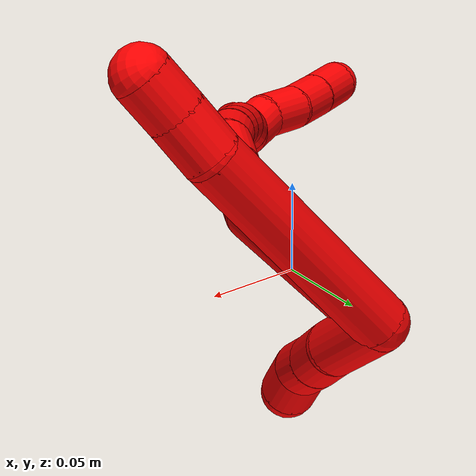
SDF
<sdf version="1.7">
 <world name="default">
  <model name="2">
   <static>0</static>
   <link name="2">
    <collision name="collision-cylinder-e_1_2_8">
     <pose>0.050109 0.013976 0.015784 -0.724709 1.17256 -0.493319</pose>
     <geometry><cylinder><radius>0.0125</radius><length>0.108727</length></cylinder></geometry>
     <surface>
      <friction><ode><mu>1.16</mu><mu2>1.16</mu2><slip1>0</slip1><slip2>0</slip2></ode></friction>
      <contact><ode><kp>1e+06</kp><kd>1</kd><max_vel>0</max_vel><min_depth>0.001</min_depth></ode></contact>
     </surface>
    </collision>
    <visual name="visual-cylinder-e_1_2_8">
     <pose>0.050109 0.013976 0.015784 -0.724709 1.17256 -0.493319</pose>
     <geometry><cylinder><radius>0.0125</radius><length>0.108727</length></cylinder></geometry>
     <material><ambient>1 0 0 1</ambient></material>
    </visual>
    <collision name="collision-cylinder-e_2_8_9">
     <pose>0.110654 0.02867 0.033257 -0.402442 1.39659 -0.339148</pose>
     <geometry><cylinder><radius>0.0125</radius><length>0.021192</length></cylinder></geometry>
     <surface>
      <friction><ode><mu>1.16</mu><mu2>1.16</mu2><slip1>0</slip1><slip2>0</slip2></ode></friction>
      <contact><ode><kp>1e+06</kp><kd>1</kd><max_vel>0</max_vel><min_depth>0.001</min_depth></ode></contact>
     </surface>
    </collision>
    <visual name="visual-cylinder-e_2_8_9">
     <pose>0.110654 0.02867 0.033257 -0.402442 1.39659 -0.339148</pose>
     <geometry><cylinder><radius>0.0125</radius><length>0.021192</length></cylinder></geometry>
     <material><ambient>1 0 0 1</ambient></material>
    </visual>
    <collision name="collision-cylinder-e_3_9_6">
     <pose>0.130894 0.030489 0.036814 -0.532121 1.3533 -0.430948</pose>
     <geometry><cylinder><radius>0.0125</radius><length>0.020081</length></cylinder></geometry>
     <surface>
      <friction><ode><mu>1.16</mu><mu2>1.16</mu2><slip1>0</slip1><slip2>0</slip2></ode></friction>
      <contact><ode><kp>1e+06</kp><kd>1</kd><max_vel>0</max_vel><min_depth>0.001</min_depth></ode></contact>
     </surface>
    </collision>
    <visual name="visual-cylinder-e_3_9_6">
     <pose>0.130894 0.030489 0.036814 -0.532121 1.3533 -0.430948</pose>
     <geometry><cylinder><radius>0.0125</radius><length>0.020081</length></cylinder></geometry>
     <material><ambient>1 0 0 1</ambient></material>
    </visual>
    <collision name="collision-cylinder-e_1_2_10">
     <pose>-0.000651 3.9e-05 -0.018197 -3.13945 -0.035751 3.022</pose>
     <geometry><cylinder><radius>0.0125</radius><length>0.036418</length></cylinder></geometry>
     <surface>
      <friction><ode><mu>1.16</mu><mu2>1.16</mu2><slip1>0</slip1><slip2>0</slip2></ode></friction>
      <contact><ode><kp>1e+06</kp><kd>1</kd><max_vel>0</max_vel><min_depth>0.001</min_depth></ode></contact>
     </surface>
    </collision>
    <visual name="visual-cylinder-e_1_2_10">
     <pose>-0.000651 3.9e-05 -0.018197 -3.13945 -0.035751 3.022</pose>
     <geometry><cylinder><radius>0.0125</radius><length>0.036418</length></cylinder></geometry>
     <material><ambient>1 0 0 1</ambient></material>
    </visual>
    <collision name="collision-cylinder-e_2_10_11">
     <pose>-0.003089 -0.002038 -0.047494 2.95327 -0.15686 -1.38808</pose>
     <geometry><cylinder><radius>0.0125</radius><length>0.02288</length></cylinder></geometry>
     <surface>
      <friction><ode><mu>1.16</mu><mu2>1.16</mu2><slip1>0</slip1><slip2>0</slip2></ode></friction>
      <contact><ode><kp>1e+06</kp><kd>1</kd><max_vel>0</max_vel><min_depth>0.001</min_depth></ode></contact>
     </surface>
    </collision>
    <visual name="visual-cylinder-e_2_10_11">
     <pose>-0.003089 -0.002038 -0.047494 2.95327 -0.15686 -1.38808</pose>
     <geometry><cylinder><radius>0.0125</radius><length>0.02288</length></cylinder></geometry>
     <material><ambient>1 0 0 1</ambient></material>
    </visual>
    <collision name="collision-cylinder-e_3_11_12">
     <pose>-0.005944 -0.006237 -0.068368 2.9315 -0.106505 -0.936161</pose>
     <geometry><cylinder><radius>0.0125</radius><length>0.020101</length></cylinder></geometry>
     <surface>
      <friction><ode><mu>1.16</mu><mu2>1.16</mu2><slip1>0</slip1><slip2>0</slip2></ode></friction>
      <contact><ode><kp>1e+06</kp><kd>1</kd><max_vel>0</max_vel><min_depth>0.001</min_depth></ode></contact>
     </surface>
    </collision>
    <visual name="visual-cylinder-e_3_11_12">
     <pose>-0.005944 -0.006237 -0.068368 2.9315 -0.106505 -0.936161</pose>
     <geometry><cylinder><radius>0.0125</radius><length>0.020101</length></cylinder></geometry>
     <material><ambient>1 0 0 1</ambient></material>
    </visual>
    <collision name="collision-cylinder-e_4_12_5">
     <pose>-0.010341 -0.007993 -0.087884 -3.10792 -0.328989 2.93942</pose>
     <geometry><cylinder><radius>0.0125</radius><length>0.020601</length></cylinder></geometry>
     <surface>
      <friction><ode><mu>1.16</mu><mu2>1.16</mu2><slip1>0</slip1><slip2>0</slip2></ode></friction>
      <contact><ode><kp>1e+06</kp><kd>1</kd><max_vel>0</max_vel><min_depth>0.001</min_depth></ode></contact>
     </surface>
    </collision>
    <visual name="visual-cylinder-e_4_12_5">
     <pose>-0.010341 -0.007993 -0.087884 -3.10792 -0.328989 2.93942</pose>
     <geometry><cylinder><radius>0.0125</radius><length>0.020601</length></cylinder></geometry>
     <material><ambient>1 0 0 1</ambient></material>
    </visual>
    <collision name="collision-cylinder-e_1_2_13">
     <pose>0.02674 -0.028236 -0.046921 2.59986 0.454243 1.38821</pose>
     <geometry><cylinder><radius>0.0125</radius><length>0.121884</length></cylinder></geometry>
     <surface>
      <friction><ode><mu>1.16</mu><mu2>1.16</mu2><slip1>0</slip1><slip2>0</slip2></ode></friction>
      <contact><ode><kp>1e+06</kp><kd>1</kd><max_vel>0</max_vel><min_depth>0.001</min_depth></ode></contact>
     </surface>
    </collision>
    <visual name="visual-cylinder-e_1_2_13">
     <pose>0.02674 -0.028236 -0.046921 2.59986 0.454243 1.38821</pose>
     <geometry><cylinder><radius>0.0125</radius><length>0.121884</length></cylinder></geometry>
     <material><ambient>1 0 0 1</ambient></material>
    </visual>
    <collision name="collision-cylinder-e_2_13_14">
     <pose>0.061629 -0.072627 -0.10844 2.30562 0.358136 0.773954</pose>
     <geometry><cylinder><radius>0.0125</radius><length>0.046494</length></cylinder></geometry>
     <surface>
      <friction><ode><mu>1.16</mu><mu2>1.16</mu2><slip1>0</slip1><slip2>0</slip2></ode></friction>
      <contact><ode><kp>1e+06</kp><kd>1</kd><max_vel>0</max_vel><min_depth>0.001</min_depth></ode></contact>
     </surface>
    </collision>
    <visual name="visual-cylinder-e_2_13_14">
     <pose>0.061629 -0.072627 -0.10844 2.30562 0.358136 0.773954</pose>
     <geometry><cylinder><radius>0.0125</radius><length>0.046494</length></cylinder></geometry>
     <material><ambient>1 0 0 1</ambient></material>
    </visual>
    <collision name="collision-cylinder-e_3_14_15">
     <pose>0.074091 -0.098937 -0.132443 2.31784 0.302051 0.670419</pose>
     <geometry><cylinder><radius>0.0125</radius><length>0.028999</length></cylinder></geometry>
     <surface>
      <friction><ode><mu>1.16</mu><mu2>1.16</mu2><slip1>0</slip1><slip2>0</slip2></ode></friction>
      <contact><ode><kp>1e+06</kp><kd>1</kd><max_vel>0</max_vel><min_depth>0.001</min_depth></ode></contact>
     </surface>
    </collision>
    <visual name="visual-cylinder-e_3_14_15">
     <pose>0.074091 -0.098937 -0.132443 2.31784 0.302051 0.670419</pose>
     <geometry><cylinder><radius>0.0125</radius><length>0.028999</length></cylinder></geometry>
     <material><ambient>1 0 0 1</ambient></material>
    </visual>
    <collision name="collision-cylinder-e_4_15_16">
     <pose>0.078844 -0.116909 -0.14864 2.2862 0.042423 0.093014</pose>
     <geometry><cylinder><radius>0.0125</radius><length>0.020726</length></cylinder></geometry>
     <surface>
      <friction><ode><mu>1.16</mu><mu2>1.16</mu2><slip1>0</slip1><slip2>0</slip2></ode></friction>
      <contact><ode><kp>1e+06</kp><kd>1</kd><max_vel>0</max_vel><min_depth>0.001</min_depth></ode></contact>
     </surface>
    </collision>
    <visual name="visual-cylinder-e_4_15_16">
     <pose>0.078844 -0.116909 -0.14864 2.2862 0.042423 0.093014</pose>
     <geometry><cylinder><radius>0.0125</radius><length>0.020726</length></cylinder></geometry>
     <material><ambient>1 0 0 1</ambient></material>
    </visual>
    <collision name="collision-cylinder-e_5_16_17">
     <pose>0.078196 -0.131845 -0.162625 2.36125 -0.107035 -0.259055</pose>
     <geometry><cylinder><radius>0.0125</radius><length>0.020361</length></cylinder></geometry>
     <surface>
      <friction><ode><mu>1.16</mu><mu2>1.16</mu2><slip1>0</slip1><slip2>0</slip2></ode></friction>
      <contact><ode><kp>1e+06</kp><kd>1</kd><max_vel>0</max_vel><min_depth>0.001</min_depth></ode></contact>
     </surface>
    </collision>
    <visual name="visual-cylinder-e_5_16_17">
     <pose>0.078196 -0.131845 -0.162625 2.36125 -0.107035 -0.259055</pose>
     <geometry><cylinder><radius>0.0125</radius><length>0.020361</length></cylinder></geometry>
     <material><ambient>1 0 0 1</ambient></material>
    </visual>
    <collision name="collision-cylinder-e_6_17_18">
     <pose>0.075817 -0.146536 -0.177198 2.34344 -0.121533 -0.286572</pose>
     <geometry><cylinder><radius>0.0125</radius><length>0.0213</length></cylinder></geometry>
     <surface>
      <friction><ode><mu>1.16</mu><mu2>1.16</mu2><slip1>0</slip1><slip2>0</slip2></ode></friction>
      <contact><ode><kp>1e+06</kp><kd>1</kd><max_vel>0</max_vel><min_depth>0.001</min_depth></ode></contact>
     </surface>
    </collision>
    <visual name="visual-cylinder-e_6_17_18">
     <pose>0.075817 -0.146536 -0.177198 2.34344 -0.121533 -0.286572</pose>
     <geometry><cylinder><radius>0.0125</radius><length>0.0213</length></cylinder></geometry>
     <material><ambient>1 0 0 1</ambient></material>
    </visual>
    <collision name="collision-cylinder-e_7_18_19">
     <pose>0.07198 -0.160164 -0.192228 2.47191 -0.255197 -0.706513</pose>
     <geometry><cylinder><radius>0.0125</radius><length>0.02017</length></cylinder></geometry>
     <surface>
      <friction><ode><mu>1.16</mu><mu2>1.16</mu2><slip1>0</slip1><slip2>0</slip2></ode></friction>
      <contact><ode><kp>1e+06</kp><kd>1</kd><max_vel>0</max_vel><min_depth>0.001</min_depth></ode></contact>
     </surface>
    </collision>
    <visual name="visual-cylinder-e_7_18_19">
     <pose>0.07198 -0.160164 -0.192228 2.47191 -0.255197 -0.706513</pose>
     <geometry><cylinder><radius>0.0125</radius><length>0.02017</length></cylinder></geometry>
     <material><ambient>1 0 0 1</ambient></material>
    </visual>
    <collision name="collision-cylinder-e_8_19_1">
     <pose>0.067421 -0.171621 -0.208091 2.55998 -0.202037 -0.653105</pose>
     <geometry><cylinder><radius>0.0125</radius><length>0.020066</length></cylinder></geometry>
     <surface>
      <friction><ode><mu>1.16</mu><mu2>1.16</mu2><slip1>0</slip1><slip2>0</slip2></ode></friction>
      <contact><ode><kp>1e+06</kp><kd>1</kd><max_vel>0</max_vel><min_depth>0.001</min_depth></ode></contact>
     </surface>
    </collision>
    <visual name="visual-cylinder-e_8_19_1">
     <pose>0.067421 -0.171621 -0.208091 2.55998 -0.202037 -0.653105</pose>
     <geometry><cylinder><radius>0.0125</radius><length>0.020066</length></cylinder></geometry>
     <material><ambient>1 0 0 1</ambient></material>
    </visual>
    <collision name="collision-cylinder-e_1_1_20">
     <pose>0.064929 -0.18296 -0.224334 2.50474 -0.047961 -0.145265</pose>
     <geometry><cylinder><radius>0.0125</radius><length>0.02</length></cylinder></geometry>
     <surface>
      <friction><ode><mu>1.16</mu><mu2>1.16</mu2><slip1>0</slip1><slip2>0</slip2></ode></friction>
      <contact><ode><kp>1e+06</kp><kd>1</kd><max_vel>0</max_vel><min_depth>0.001</min_depth></ode></contact>
     </surface>
    </collision>
    <visual name="visual-cylinder-e_1_1_20">
     <pose>0.064929 -0.18296 -0.224334 2.50474 -0.047961 -0.145265</pose>
     <geometry><cylinder><radius>0.0125</radius><length>0.02</length></cylinder></geometry>
     <material><ambient>1 0 0 1</ambient></material>
    </visual>
    <collision name="collision-cylinder-e_2_20_21">
     <pose>0.063945 -0.195238 -0.240083 2.4541 -0.050405 -0.14061</pose>
     <geometry><cylinder><radius>0.0125</radius><length>0.02</length></cylinder></geometry>
     <surface>
      <friction><ode><mu>1.16</mu><mu2>1.16</mu2><slip1>0</slip1><slip2>0</slip2></ode></friction>
      <contact><ode><kp>1e+06</kp><kd>1</kd><max_vel>0</max_vel><min_depth>0.001</min_depth></ode></contact>
     </surface>
    </collision>
    <visual name="visual-cylinder-e_2_20_21">
     <pose>0.063945 -0.195238 -0.240083 2.4541 -0.050405 -0.14061</pose>
     <geometry><cylinder><radius>0.0125</radius><length>0.02</length></cylinder></geometry>
     <material><ambient>1 0 0 1</ambient></material>
    </visual>
    <collision name="collision-cylinder-e_3_21_22">
     <pose>0.062965 -0.206278 -0.256615 2.65149 -0.047645 -0.189983</pose>
     <geometry><cylinder><radius>0.0125</radius><length>0.02</length></cylinder></geometry>
     <surface>
      <friction><ode><mu>1.16</mu><mu2>1.16</mu2><slip1>0</slip1><slip2>0</slip2></ode></friction>
      <contact><ode><kp>1e+06</kp><kd>1</kd><max_vel>0</max_vel><min_depth>0.001</min_depth></ode></contact>
     </surface>
    </collision>
    <visual name="visual-cylinder-e_3_21_22">
     <pose>0.062965 -0.206278 -0.256615 2.65149 -0.047645 -0.189983</pose>
     <geometry><cylinder><radius>0.0125</radius><length>0.02</length></cylinder></geometry>
     <material><ambient>1 0 0 1</ambient></material>
    </visual>
    <collision name="collision-cylinder-e_4_22_23">
     <pose>0.062549 -0.216141 -0.273993 2.59932 0.006046 0.021747</pose>
     <geometry><cylinder><radius>0.0125</radius><length>0.02</length></cylinder></geometry>
     <surface>
      <friction><ode><mu>1.16</mu><mu2>1.16</mu2><slip1>0</slip1><slip2>0</slip2></ode></friction>
      <contact><ode><kp>1e+06</kp><kd>1</kd><max_vel>0</max_vel><min_depth>0.001</min_depth></ode></contact>
     </surface>
    </collision>
    <visual name="visual-cylinder-e_4_22_23">
     <pose>0.062549 -0.216141 -0.273993 2.59932 0.006046 0.021747</pose>
     <geometry><cylinder><radius>0.0125</radius><length>0.02</length></cylinder></geometry>
     <material><ambient>1 0 0 1</ambient></material>
    </visual>
    <collision name="collision-cylinder-e_5_23_4">
     <pose>0.063766 -0.228734 -0.289147 2.29613 0.115886 0.256482</pose>
     <geometry><cylinder><radius>0.0125</radius><length>0.02</length></cylinder></geometry>
     <surface>
      <friction><ode><mu>1.16</mu><mu2>1.16</mu2><slip1>0</slip1><slip2>0</slip2></ode></friction>
      <contact><ode><kp>1e+06</kp><kd>1</kd><max_vel>0</max_vel><min_depth>0.001</min_depth></ode></contact>
     </surface>
    </collision>
    <visual name="visual-cylinder-e_5_23_4">
     <pose>0.063766 -0.228734 -0.289147 2.29613 0.115886 0.256482</pose>
     <geometry><cylinder><radius>0.0125</radius><length>0.02</length></cylinder></geometry>
     <material><ambient>1 0 0 1</ambient></material>
    </visual>
    <collision name="collision-cylinder-e_1_1_24">
     <pose>0.064678 -0.187645 -0.218532 1.7775 -0.067123 -0.082643</pose>
     <geometry><cylinder><radius>0.0125</radius><length>0.02176</length></cylinder></geometry>
     <surface>
      <friction><ode><mu>1.16</mu><mu2>1.16</mu2><slip1>0</slip1><slip2>0</slip2></ode></friction>
      <contact><ode><kp>1e+06</kp><kd>1</kd><max_vel>0</max_vel><min_depth>0.001</min_depth></ode></contact>
     </surface>
    </collision>
    <visual name="visual-cylinder-e_1_1_24">
     <pose>0.064678 -0.187645 -0.218532 1.7775 -0.067123 -0.082643</pose>
     <geometry><cylinder><radius>0.0125</radius><length>0.02176</length></cylinder></geometry>
     <material><ambient>1 0 0 1</ambient></material>
    </visual>
    <collision name="collision-cylinder-e_2_24_25">
     <pose>0.059257 -0.210164 -0.223208 1.77381 -0.36863 -0.449699</pose>
     <geometry><cylinder><radius>0.0125</radius><length>0.026038</length></cylinder></geometry>
     <surface>
      <friction><ode><mu>1.16</mu><mu2>1.16</mu2><slip1>0</slip1><slip2>0</slip2></ode></friction>
      <contact><ode><kp>1e+06</kp><kd>1</kd><max_vel>0</max_vel><min_depth>0.001</min_depth></ode></contact>
     </surface>
    </collision>
    <visual name="visual-cylinder-e_2_24_25">
     <pose>0.059257 -0.210164 -0.223208 1.77381 -0.36863 -0.449699</pose>
     <geometry><cylinder><radius>0.0125</radius><length>0.026038</length></cylinder></geometry>
     <material><ambient>1 0 0 1</ambient></material>
    </visual>
    <collision name="collision-cylinder-e_3_25_26">
     <pose>0.051758 -0.23385 -0.229197 1.86246 -0.224246 -0.300449</pose>
     <geometry><cylinder><radius>0.0125</radius><length>0.025253</length></cylinder></geometry>
     <surface>
      <friction><ode><mu>1.16</mu><mu2>1.16</mu2><slip1>0</slip1><slip2>0</slip2></ode></friction>
      <contact><ode><kp>1e+06</kp><kd>1</kd><max_vel>0</max_vel><min_depth>0.001</min_depth></ode></contact>
     </surface>
    </collision>
    <visual name="visual-cylinder-e_3_25_26">
     <pose>0.051758 -0.23385 -0.229197 1.86246 -0.224246 -0.300449</pose>
     <geometry><cylinder><radius>0.0125</radius><length>0.025253</length></cylinder></geometry>
     <material><ambient>1 0 0 1</ambient></material>
    </visual>
    <collision name="collision-cylinder-e_4_26_3">
     <pose>0.046329 -0.258199 -0.236855 1.88765 -0.195786 -0.269465</pose>
     <geometry><cylinder><radius>0.0125</radius><length>0.026949</length></cylinder></geometry>
     <surface>
      <friction><ode><mu>1.16</mu><mu2>1.16</mu2><slip1>0</slip1><slip2>0</slip2></ode></friction>
      <contact><ode><kp>1e+06</kp><kd>1</kd><max_vel>0</max_vel><min_depth>0.001</min_depth></ode></contact>
     </surface>
    </collision>
    <visual name="visual-cylinder-e_4_26_3">
     <pose>0.046329 -0.258199 -0.236855 1.88765 -0.195786 -0.269465</pose>
     <geometry><cylinder><radius>0.0125</radius><length>0.026949</length></cylinder></geometry>
     <material><ambient>1 0 0 1</ambient></material>
    </visual>
    <collision name="collision-sphere-3">
     <pose>0.043708 -0.270758 -0.240973 0 -0 0</pose>
     <geometry><sphere><radius>0.0125</radius></sphere></geometry>
     <surface>
      <friction><ode><mu>1.16</mu><mu2>1.16</mu2><slip1>0</slip1><slip2>0</slip2></ode></friction>
      <contact><ode><kp>1e+06</kp><kd>1</kd><max_vel>0</max_vel><min_depth>0.001</min_depth></ode></contact>
     </surface>
    </collision>
    <visual name="visual-sphere-3">
     <pose>0.043708 -0.270758 -0.240973 0 -0 0</pose>
     <geometry><sphere><radius>0.0125</radius></sphere></geometry>
     <material><ambient>1 0 0 1</ambient></material>
    </visual>
    <collision name="collision-sphere-26">
     <pose>0.048951 -0.24564 -0.232736 0 -0 0</pose>
     <geometry><sphere><radius>0.0125</radius></sphere></geometry>
     <surface>
      <friction><ode><mu>1.16</mu><mu2>1.16</mu2><slip1>0</slip1><slip2>0</slip2></ode></friction>
      <contact><ode><kp>1e+06</kp><kd>1</kd><max_vel>0</max_vel><min_depth>0.001</min_depth></ode></contact>
     </surface>
    </collision>
    <visual name="visual-sphere-26">
     <pose>0.048951 -0.24564 -0.232736 0 -0 0</pose>
     <geometry><sphere><radius>0.0125</radius></sphere></geometry>
     <material><ambient>1 0 0 1</ambient></material>
    </visual>
    <collision name="collision-sphere-25">
     <pose>0.054566 -0.222059 -0.225657 0 -0 0</pose>
     <geometry><sphere><radius>0.0125</radius></sphere></geometry>
     <surface>
      <friction><ode><mu>1.16</mu><mu2>1.16</mu2><slip1>0</slip1><slip2>0</slip2></ode></friction>
      <contact><ode><kp>1e+06</kp><kd>1</kd><max_vel>0</max_vel><min_depth>0.001</min_depth></ode></contact>
     </surface>
    </collision>
    <visual name="visual-sphere-25">
     <pose>0.054566 -0.222059 -0.225657 0 -0 0</pose>
     <geometry><sphere><radius>0.0125</radius></sphere></geometry>
     <material><ambient>1 0 0 1</ambient></material>
    </visual>
    <collision name="collision-sphere-24">
     <pose>0.063949 -0.198269 -0.22076 0 -0 0</pose>
     <geometry><sphere><radius>0.0125</radius></sphere></geometry>
     <surface>
      <friction><ode><mu>1.16</mu><mu2>1.16</mu2><slip1>0</slip1><slip2>0</slip2></ode></friction>
      <contact><ode><kp>1e+06</kp><kd>1</kd><max_vel>0</max_vel><min_depth>0.001</min_depth></ode></contact>
     </surface>
    </collision>
    <visual name="visual-sphere-24">
     <pose>0.063949 -0.198269 -0.22076 0 -0 0</pose>
     <geometry><sphere><radius>0.0125</radius></sphere></geometry>
     <material><ambient>1 0 0 1</ambient></material>
    </visual>
    <collision name="collision-sphere-4">
     <pose>0.064922 -0.236167 -0.295737 0 -0 0</pose>
     <geometry><sphere><radius>0.0125</radius></sphere></geometry>
     <surface>
      <friction><ode><mu>1.16</mu><mu2>1.16</mu2><slip1>0</slip1><slip2>0</slip2></ode></friction>
      <contact><ode><kp>1e+06</kp><kd>1</kd><max_vel>0</max_vel><min_depth>0.001</min_depth></ode></contact>
     </surface>
    </collision>
    <visual name="visual-sphere-4">
     <pose>0.064922 -0.236167 -0.295737 0 -0 0</pose>
     <geometry><sphere><radius>0.0125</radius></sphere></geometry>
     <material><ambient>1 0 0 1</ambient></material>
    </visual>
    <collision name="collision-sphere-23">
     <pose>0.06261 -0.221301 -0.282558 0 -0 0</pose>
     <geometry><sphere><radius>0.0125</radius></sphere></geometry>
     <surface>
      <friction><ode><mu>1.16</mu><mu2>1.16</mu2><slip1>0</slip1><slip2>0</slip2></ode></friction>
      <contact><ode><kp>1e+06</kp><kd>1</kd><max_vel>0</max_vel><min_depth>0.001</min_depth></ode></contact>
     </surface>
    </collision>
    <visual name="visual-sphere-23">
     <pose>0.06261 -0.221301 -0.282558 0 -0 0</pose>
     <geometry><sphere><radius>0.0125</radius></sphere></geometry>
     <material><ambient>1 0 0 1</ambient></material>
    </visual>
    <collision name="collision-sphere-22">
     <pose>0.062489 -0.21098 -0.265428 0 -0 0</pose>
     <geometry><sphere><radius>0.0125</radius></sphere></geometry>
     <surface>
      <friction><ode><mu>1.16</mu><mu2>1.16</mu2><slip1>0</slip1><slip2>0</slip2></ode></friction>
      <contact><ode><kp>1e+06</kp><kd>1</kd><max_vel>0</max_vel><min_depth>0.001</min_depth></ode></contact>
     </surface>
    </collision>
    <visual name="visual-sphere-22">
     <pose>0.062489 -0.21098 -0.265428 0 -0 0</pose>
     <geometry><sphere><radius>0.0125</radius></sphere></geometry>
     <material><ambient>1 0 0 1</ambient></material>
    </visual>
    <collision name="collision-sphere-21">
     <pose>0.063442 -0.201576 -0.247802 0 -0 0</pose>
     <geometry><sphere><radius>0.0125</radius></sphere></geometry>
     <surface>
      <friction><ode><mu>1.16</mu><mu2>1.16</mu2><slip1>0</slip1><slip2>0</slip2></ode></friction>
      <contact><ode><kp>1e+06</kp><kd>1</kd><max_vel>0</max_vel><min_depth>0.001</min_depth></ode></contact>
     </surface>
    </collision>
    <visual name="visual-sphere-21">
     <pose>0.063442 -0.201576 -0.247802 0 -0 0</pose>
     <geometry><sphere><radius>0.0125</radius></sphere></geometry>
     <material><ambient>1 0 0 1</ambient></material>
    </visual>
    <collision name="collision-sphere-20">
     <pose>0.064449 -0.1889 -0.232365 0 -0 0</pose>
     <geometry><sphere><radius>0.0125</radius></sphere></geometry>
     <surface>
      <friction><ode><mu>1.16</mu><mu2>1.16</mu2><slip1>0</slip1><slip2>0</slip2></ode></friction>
      <contact><ode><kp>1e+06</kp><kd>1</kd><max_vel>0</max_vel><min_depth>0.001</min_depth></ode></contact>
     </surface>
    </collision>
    <visual name="visual-sphere-20">
     <pose>0.064449 -0.1889 -0.232365 0 -0 0</pose>
     <geometry><sphere><radius>0.0125</radius></sphere></geometry>
     <material><ambient>1 0 0 1</ambient></material>
    </visual>
    <collision name="collision-sphere-11">
     <pose>-0.004876 -0.004153 -0.058594 0 -0 0</pose>
     <geometry><sphere><radius>0.0125</radius></sphere></geometry>
     <surface>
      <friction><ode><mu>1.16</mu><mu2>1.16</mu2><slip1>0</slip1><slip2>0</slip2></ode></friction>
      <contact><ode><kp>1e+06</kp><kd>1</kd><max_vel>0</max_vel><min_depth>0.001</min_depth></ode></contact>
     </surface>
    </collision>
    <visual name="visual-sphere-11">
     <pose>-0.004876 -0.004153 -0.058594 0 -0 0</pose>
     <geometry><sphere><radius>0.0125</radius></sphere></geometry>
     <material><ambient>1 0 0 1</ambient></material>
    </visual>
    <collision name="collision-sphere-10">
     <pose>-0.001302 7.8e-05 -0.036394 0 -0 0</pose>
     <geometry><sphere><radius>0.0125</radius></sphere></geometry>
     <surface>
      <friction><ode><mu>1.16</mu><mu2>1.16</mu2><slip1>0</slip1><slip2>0</slip2></ode></friction>
      <contact><ode><kp>1e+06</kp><kd>1</kd><max_vel>0</max_vel><min_depth>0.001</min_depth></ode></contact>
     </surface>
    </collision>
    <visual name="visual-sphere-10">
     <pose>-0.001302 7.8e-05 -0.036394 0 -0 0</pose>
     <geometry><sphere><radius>0.0125</radius></sphere></geometry>
     <material><ambient>1 0 0 1</ambient></material>
    </visual>
    <collision name="collision-sphere-6">
     <pose>0.140698 0.031588 0.038681 0 -0 0</pose>
     <geometry><sphere><radius>0.0125</radius></sphere></geometry>
     <surface>
      <friction><ode><mu>1.16</mu><mu2>1.16</mu2><slip1>0</slip1><slip2>0</slip2></ode></friction>
      <contact><ode><kp>1e+06</kp><kd>1</kd><max_vel>0</max_vel><min_depth>0.001</min_depth></ode></contact>
     </surface>
    </collision>
    <visual name="visual-sphere-6">
     <pose>0.140698 0.031588 0.038681 0 -0 0</pose>
     <geometry><sphere><radius>0.0125</radius></sphere></geometry>
     <material><ambient>1 0 0 1</ambient></material>
    </visual>
    <collision name="collision-sphere-9">
     <pose>0.12109 0.02939 0.034947 0 -0 0</pose>
     <geometry><sphere><radius>0.0125</radius></sphere></geometry>
     <surface>
      <friction><ode><mu>1.16</mu><mu2>1.16</mu2><slip1>0</slip1><slip2>0</slip2></ode></friction>
      <contact><ode><kp>1e+06</kp><kd>1</kd><max_vel>0</max_vel><min_depth>0.001</min_depth></ode></contact>
     </surface>
    </collision>
    <visual name="visual-sphere-9">
     <pose>0.12109 0.02939 0.034947 0 -0 0</pose>
     <geometry><sphere><radius>0.0125</radius></sphere></geometry>
     <material><ambient>1 0 0 1</ambient></material>
    </visual>
    <collision name="collision-sphere-2">
     <geometry><sphere><radius>0.0125</radius></sphere></geometry>
     <surface>
      <friction><ode><mu>1.16</mu><mu2>1.16</mu2><slip1>0</slip1><slip2>0</slip2></ode></friction>
      <contact><ode><kp>1e+06</kp><kd>1</kd><max_vel>0</max_vel><min_depth>0.001</min_depth></ode></contact>
     </surface>
    </collision>
    <visual name="visual-sphere-2">
     <geometry><sphere><radius>0.0125</radius></sphere></geometry>
     <material><ambient>1 0 0 1</ambient></material>
    </visual>
    <collision name="collision-sphere-19">
     <pose>0.069435 -0.166221 -0.199878 0 -0 0</pose>
     <geometry><sphere><radius>0.0125</radius></sphere></geometry>
     <surface>
      <friction><ode><mu>1.16</mu><mu2>1.16</mu2><slip1>0</slip1><slip2>0</slip2></ode></friction>
      <contact><ode><kp>1e+06</kp><kd>1</kd><max_vel>0</max_vel><min_depth>0.001</min_depth></ode></contact>
     </surface>
    </collision>
    <visual name="visual-sphere-19">
     <pose>0.069435 -0.166221 -0.199878 0 -0 0</pose>
     <geometry><sphere><radius>0.0125</radius></sphere></geometry>
     <material><ambient>1 0 0 1</ambient></material>
    </visual>
    <collision name="collision-sphere-8">
     <pose>0.100219 0.027951 0.031568 0 -0 0</pose>
     <geometry><sphere><radius>0.0125</radius></sphere></geometry>
     <surface>
      <friction><ode><mu>1.16</mu><mu2>1.16</mu2><slip1>0</slip1><slip2>0</slip2></ode></friction>
      <contact><ode><kp>1e+06</kp><kd>1</kd><max_vel>0</max_vel><min_depth>0.001</min_depth></ode></contact>
     </surface>
    </collision>
    <visual name="visual-sphere-8">
     <pose>0.100219 0.027951 0.031568 0 -0 0</pose>
     <geometry><sphere><radius>0.0125</radius></sphere></geometry>
     <material><ambient>1 0 0 1</ambient></material>
    </visual>
    <collision name="collision-sphere-12">
     <pose>-0.007013 -0.008321 -0.078142 0 -0 0</pose>
     <geometry><sphere><radius>0.0125</radius></sphere></geometry>
     <surface>
      <friction><ode><mu>1.16</mu><mu2>1.16</mu2><slip1>0</slip1><slip2>0</slip2></ode></friction>
      <contact><ode><kp>1e+06</kp><kd>1</kd><max_vel>0</max_vel><min_depth>0.001</min_depth></ode></contact>
     </surface>
    </collision>
    <visual name="visual-sphere-12">
     <pose>-0.007013 -0.008321 -0.078142 0 -0 0</pose>
     <geometry><sphere><radius>0.0125</radius></sphere></geometry>
     <material><ambient>1 0 0 1</ambient></material>
    </visual>
    <collision name="collision-sphere-5">
     <pose>-0.013669 -0.007665 -0.097627 0 -0 0</pose>
     <geometry><sphere><radius>0.0125</radius></sphere></geometry>
     <surface>
      <friction><ode><mu>1.16</mu><mu2>1.16</mu2><slip1>0</slip1><slip2>0</slip2></ode></friction>
      <contact><ode><kp>1e+06</kp><kd>1</kd><max_vel>0</max_vel><min_depth>0.001</min_depth></ode></contact>
     </surface>
    </collision>
    <visual name="visual-sphere-5">
     <pose>-0.013669 -0.007665 -0.097627 0 -0 0</pose>
     <geometry><sphere><radius>0.0125</radius></sphere></geometry>
     <material><ambient>1 0 0 1</ambient></material>
    </visual>
    <collision name="collision-sphere-13">
     <pose>0.053481 -0.056473 -0.093843 0 -0 0</pose>
     <geometry><sphere><radius>0.0125</radius></sphere></geometry>
     <surface>
      <friction><ode><mu>1.16</mu><mu2>1.16</mu2><slip1>0</slip1><slip2>0</slip2></ode></friction>
      <contact><ode><kp>1e+06</kp><kd>1</kd><max_vel>0</max_vel><min_depth>0.001</min_depth></ode></contact>
     </surface>
    </collision>
    <visual name="visual-sphere-13">
     <pose>0.053481 -0.056473 -0.093843 0 -0 0</pose>
     <geometry><sphere><radius>0.0125</radius></sphere></geometry>
     <material><ambient>1 0 0 1</ambient></material>
    </visual>
    <collision name="collision-sphere-14">
     <pose>0.069778 -0.08878 -0.123037 0 -0 0</pose>
     <geometry><sphere><radius>0.0125</radius></sphere></geometry>
     <surface>
      <friction><ode><mu>1.16</mu><mu2>1.16</mu2><slip1>0</slip1><slip2>0</slip2></ode></friction>
      <contact><ode><kp>1e+06</kp><kd>1</kd><max_vel>0</max_vel><min_depth>0.001</min_depth></ode></contact>
     </surface>
    </collision>
    <visual name="visual-sphere-14">
     <pose>0.069778 -0.08878 -0.123037 0 -0 0</pose>
     <geometry><sphere><radius>0.0125</radius></sphere></geometry>
     <material><ambient>1 0 0 1</ambient></material>
    </visual>
    <collision name="collision-sphere-15">
     <pose>0.078405 -0.109094 -0.141849 0 -0 0</pose>
     <geometry><sphere><radius>0.0125</radius></sphere></geometry>
     <surface>
      <friction><ode><mu>1.16</mu><mu2>1.16</mu2><slip1>0</slip1><slip2>0</slip2></ode></friction>
      <contact><ode><kp>1e+06</kp><kd>1</kd><max_vel>0</max_vel><min_depth>0.001</min_depth></ode></contact>
     </surface>
    </collision>
    <visual name="visual-sphere-15">
     <pose>0.078405 -0.109094 -0.141849 0 -0 0</pose>
     <geometry><sphere><radius>0.0125</radius></sphere></geometry>
     <material><ambient>1 0 0 1</ambient></material>
    </visual>
    <collision name="collision-sphere-16">
     <pose>0.079284 -0.124724 -0.155431 0 -0 0</pose>
     <geometry><sphere><radius>0.0125</radius></sphere></geometry>
     <surface>
      <friction><ode><mu>1.16</mu><mu2>1.16</mu2><slip1>0</slip1><slip2>0</slip2></ode></friction>
      <contact><ode><kp>1e+06</kp><kd>1</kd><max_vel>0</max_vel><min_depth>0.001</min_depth></ode></contact>
     </surface>
    </collision>
    <visual name="visual-sphere-16">
     <pose>0.079284 -0.124724 -0.155431 0 -0 0</pose>
     <geometry><sphere><radius>0.0125</radius></sphere></geometry>
     <material><ambient>1 0 0 1</ambient></material>
    </visual>
    <collision name="collision-sphere-17">
     <pose>0.077109 -0.138967 -0.169819 0 -0 0</pose>
     <geometry><sphere><radius>0.0125</radius></sphere></geometry>
     <surface>
      <friction><ode><mu>1.16</mu><mu2>1.16</mu2><slip1>0</slip1><slip2>0</slip2></ode></friction>
      <contact><ode><kp>1e+06</kp><kd>1</kd><max_vel>0</max_vel><min_depth>0.001</min_depth></ode></contact>
     </surface>
    </collision>
    <visual name="visual-sphere-17">
     <pose>0.077109 -0.138967 -0.169819 0 -0 0</pose>
     <geometry><sphere><radius>0.0125</radius></sphere></geometry>
     <material><ambient>1 0 0 1</ambient></material>
    </visual>
    <collision name="collision-sphere-18">
     <pose>0.074526 -0.154106 -0.184577 0 -0 0</pose>
     <geometry><sphere><radius>0.0125</radius></sphere></geometry>
     <surface>
      <friction><ode><mu>1.16</mu><mu2>1.16</mu2><slip1>0</slip1><slip2>0</slip2></ode></friction>
      <contact><ode><kp>1e+06</kp><kd>1</kd><max_vel>0</max_vel><min_depth>0.001</min_depth></ode></contact>
     </surface>
    </collision>
    <visual name="visual-sphere-18">
     <pose>0.074526 -0.154106 -0.184577 0 -0 0</pose>
     <geometry><sphere><radius>0.0125</radius></sphere></geometry>
     <material><ambient>1 0 0 1</ambient></material>
    </visual>
    <collision name="collision-sphere-1">
     <pose>0.065408 -0.177021 -0.216304 0 -0 0</pose>
     <geometry><sphere><radius>0.0125</radius></sphere></geometry>
     <surface>
      <friction><ode><mu>1.16</mu><mu2>1.16</mu2><slip1>0</slip1><slip2>0</slip2></ode></friction>
      <contact><ode><kp>1e+06</kp><kd>1</kd><max_vel>0</max_vel><min_depth>0.001</min_depth></ode></contact>
     </surface>
    </collision>
    <visual name="visual-sphere-1">
     <pose>0.065408 -0.177021 -0.216304 0 -0 0</pose>
     <geometry><sphere><radius>0.0125</radius></sphere></geometry>
     <material><ambient>1 0 0 1</ambient></material>
    </visual>
    <inertial>
     <pose>0.050377 -0.086923 -0.110688 0 -0 0</pose>
     <mass>0.75</mass>
     <inertia>
      <ixx>0.000221</ixx>
      <ixy>0</ixy>
      <ixz>0</ixz>
      <iyy>0.000203</iyy>
      <iyz>0</iyz>
      <izz>-0.000133</izz>
     </inertia>
    </inertial>
   </link>
   <pose>0.093642 0.180701 0.080365 -0.442223 -0.802191 -0.91596</pose>
  </model>
 </world>
</sdf>
